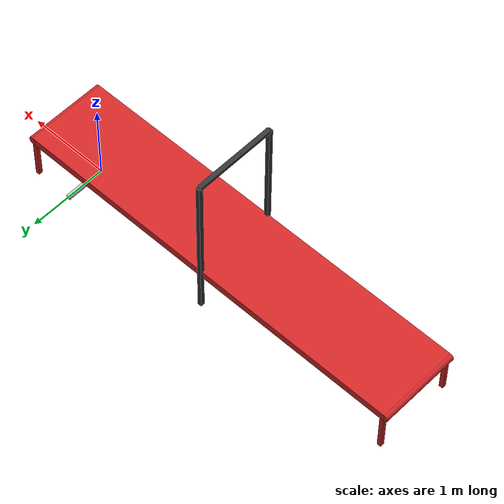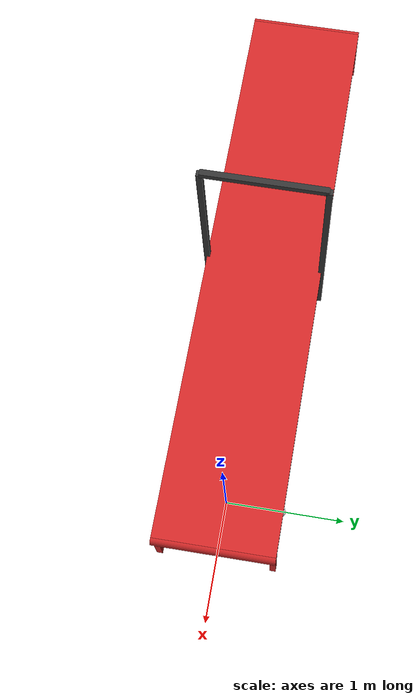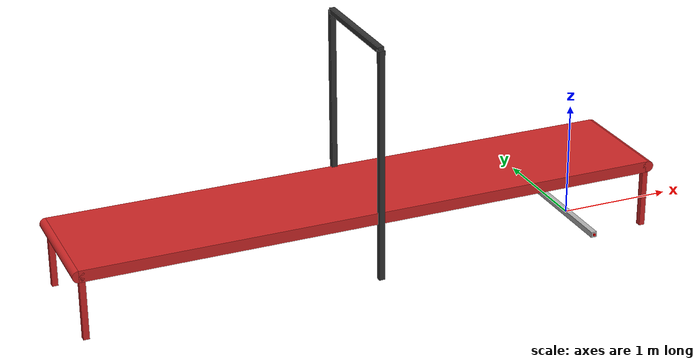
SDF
<sdf version="1.7">
 <world name="warehouse">
  <physics type="ode">
   <max_step_size>0.01</max_step_size>
   <real_time_factor>1.0</real_time_factor>
   <real_time_update_rate>100</real_time_update_rate>
   <max_contacts>20</max_contacts>
  </physics>
  <plugin name="gz::sim::systems::Physics" filename="gz-sim-physics-system"/>
  <plugin name="gz::sim::systems::UserCommands" filename="gz-sim-user-commands-system"/>
  <plugin name="gz::sim::systems::SceneBroadcaster" filename="gz-sim-scene-broadcaster-system"/>
  <plugin name="gz::sim::systems::Contact" filename="gz-sim-contact-system"/>
  <plugin name="gz::sim::systems::ApplyLinkWrench" filename="gz-sim-apply-link-wrench-system"/>
  <plugin name="gz::sim::systems::Sensors" filename="gz-sim-sensors-system">
   <render_engine>ogre2</render_engine>
   <background_color>0.8 0.8 0.8</background_color>
  </plugin>
  <gravity>0 0 -9.8</gravity>
  <scene>
   <ambient>1.0 1.0 1.0</ambient>
   <background>0.8 0.8 0.8</background>
   <shadows>true</shadows>
   <grid>false</grid>
  </scene>
  <light type="directional" name="sun">
   <pose>0 0 10 0 0 0</pose>
   <diffuse>0.8 0.8 0.8 1</diffuse>
   <specular>0.8 0.8 0.8 1</specular>
   <attenuation>
    <range>1000</range>
    <constant>0.9</constant>
    <linear>0.01</linear>
    <quadratic>0.001</quadratic>
   </attenuation>
   <direction>-0.5 0.1 -0.9</direction>
  </light>
  <include><uri>model://textured_conveyor</uri><pose>-2.0 0 0 0 0 0.0</pose></include>
  <include>
   <uri>model://bracket</uri>
   <name>bracket</name>
   <pose degrees="true">-2.0 0 0.0 0 0 90</pose>
   <static>true</static>
  </include>
  <joint name="bracket_lidar_joint" type="fixed">
   <parent>bracket::horizontal_bar</parent>
   <child>lidar_3d::link</child>
  </joint>
  <include>
   <uri>model://dual_camera_bar</uri>
   <name>dual_camera_bar</name>
   <pose degrees="true" relative_to="bracket::horizontal_bar">0 0 0 0 0 -90</pose>
   <static>false</static>
  </include>
  <joint name="bracket_to_dual_bar_joint" type="fixed">
   <parent>bracket::horizontal_bar</parent>
   <child>dual_camera_bar::horizontal_bar</child>
  </joint>
  <joint name="left_camera_joint" type="fixed">
   <parent>dual_camera_bar::left_camera_mount</parent>
   <child>left_camera::link</child>
  </joint>
  <joint name="right_camera_joint" type="fixed">
   <parent>dual_camera_bar::right_camera_mount</parent>
   <child>right_camera::link</child>
  </joint>
 </world>
</sdf>

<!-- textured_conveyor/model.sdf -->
<?xml version="1.0" ?>
<sdf version="1.7">
  <model name="textured_conveyor">
    <static>1</static>
    <link name="base_link">
      <pose relative_to="__model__">0 0 0 0 0 0</pose>
      <inertial>
        <mass>1000.0</mass>
        <inertia>
          <ixx>84.16666666666666</ixx>
          <ixy>0</ixy>
          <ixz>0</ixz>
          <iyy>2084.1666666666665</iyy>
          <iyz>1.5e-05</iyz>
          <izz>2166.6666666666665</izz>
        </inertia>
      </inertial>
      <collision name="main_collision">
        <pose relative_to="base_link">0 0 0.55 0 0 0</pose>
        <geometry>
          <box>
            <size>5.0 1.0 0.1</size>
          </box>
        </geometry>
        <surface>
          <friction>
            <ode>
              <mu>0.7</mu>
              <mu2>150</mu2>
              <fdir1>0 1 0</fdir1>
            </ode>
          </friction>
        </surface>
      </collision>
      <visual name="main_visual">
        <pose relative_to="base_link">0 0 0.55 0 0 0</pose>
        <geometry>
          <box>
            <size>5.0 1.0 0.1</size>
          </box>
        </geometry>
        <material>
          <diffuse>1.0 1.0 1.0</diffuse>
          <specular>1.0 1.0 1.0</specular>
          <pbr>
            <metal>
              <albedo_map>model://textured_conveyor/materials/textures/Leather032_1K-PNG_Color.png</albedo_map>
              <normal_map>model://textured_conveyor/materials/textures/Leather032_1K-PNG_NormalDX.png</normal_map>
              <metalness_map>model://textured_conveyor/materials/textures/Leather032_1K-PNG_Color.png</metalness_map>
              <roughness_map>model://textured_conveyor/materials/textures/Leather032_1K-PNG_Roughness.png</roughness_map>
            </metal>
          </pbr>
          <script>
            <uri>model://textured_conveyor/materials/scripts/</uri>
            <uri>model://textured_conveyor/materials/textures/</uri>
            <name>UrbanTile/textured_conveyor_Belt</name>
          </script>
        </material>
      </visual>
      <collision name="collision_1">
        <pose relative_to="base_link">2.5 0 0.55 -1.570796327 0 0</pose>
        <geometry>
          <cylinder>
            <length>1.0</length>
            <radius>0.05</radius>
          </cylinder>
        </geometry>
        <surface>
          <friction>
            <ode>
              <mu>0.7</mu>
              <mu2>150</mu2>
              <fdir1>0 1 0</fdir1>
            </ode>
          </friction>
        </surface>
      </collision>
      <visual name="visual_1">
        <pose relative_to="base_link">2.5 0 0.55 -1.570796327 0 0</pose>
        <geometry>
          <cylinder>
            <length>1.0</length>
            <radius>0.05</radius>
          </cylinder>
        </geometry>
        <material>
          <diffuse>1.0 1.0 1.0</diffuse>
          <specular>1.0 1.0 1.0</specular>
          <pbr>
            <metal>
              <albedo_map>model://textured_conveyor/materials/textures/Metal055A_1K-PNG_Color.png</albedo_map>
              <metalness_map>model://textured_conveyor/materials/textures/Metal055A_1K-PNG_Color.png</metalness_map>
              <roughness_map>model://textured_conveyor/materials/textures/Metal055A_1K-PNG_Roughness.png</roughness_map>
            </metal>
          </pbr>
          <script>
            <uri>model://textured_conveyor/materials/scripts/</uri>
            <uri>model://textured_conveyor/materials/textures/</uri>
            <name>UrbanTile/textured_conveyor_Roller</name>
          </script>
        </material>
      </visual>
      <collision name="collision_2">
        <pose relative_to="base_link">-2.5 0 0.55 -1.570796327 0 0</pose>
        <geometry>
          <cylinder>
            <length>1.0</length>
            <radius>0.05</radius>
          </cylinder>
        </geometry>
        <surface>
          <friction>
            <ode>
              <mu>0.7</mu>
              <mu2>150</mu2>
              <fdir1>0 1 0</fdir1>
            </ode>
          </friction>
        </surface>
      </collision>
      <visual name="visual_2">
        <pose relative_to="base_link">-2.5 0 0.55 -1.570796327 0 0</pose>
        <geometry>
          <cylinder>
            <length>1.0</length>
            <radius>0.05</radius>
          </cylinder>
        </geometry>
        <material>
          <diffuse>1.0 1.0 1.0</diffuse>
          <specular>1.0 1.0 1.0</specular>
          <pbr>
            <metal>
              <albedo_map>model://textured_conveyor/materials/textures/Metal055A_1K-PNG_Color.png</albedo_map>
              <metalness_map>model://textured_conveyor/materials/textures/Metal055A_1K-PNG_Color.png</metalness_map>
              <roughness_map>model://textured_conveyor/materials/textures/Metal055A_1K-PNG_Roughness.png</roughness_map>
            </metal>
          </pbr>
          <script>
            <uri>model://textured_conveyor/materials/scripts/</uri>
            <uri>model://textured_conveyor/materials/textures/</uri>
            <name>UrbanTile/textured_conveyor_Roller</name>
          </script>
        </material>
      </visual>
      <collision name="leg_collision_0">
        <pose relative_to="base_link">2.475 0.475 0.25 0 0 0</pose>
        <geometry>
          <box>
            <size>0.05 0.05 0.5</size>
          </box>
        </geometry>
      </collision>
      <visual name="leg_visual_0">
        <pose relative_to="base_link">2.475 0.475 0.25 0 0 0</pose>
        <geometry>
          <box>
            <size>0.05 0.05 0.5</size>
          </box>
        </geometry>
        <material>
          <diffuse>1.0 1.0 1.0</diffuse>
          <specular>1.0 1.0 1.0</specular>
          <pbr>
            <metal>
              <albedo_map>model://textured_conveyor/materials/textures/Metal055A_1K-PNG_Color.png</albedo_map>
              <metalness_map>model://textured_conveyor/materials/textures/Metal055A_1K-PNG_Color.png</metalness_map>
              <roughness_map>model://textured_conveyor/materials/textures/Metal055A_1K-PNG_Roughness.png</roughness_map>
            </metal>
          </pbr>
          <script>
            <uri>model://textured_conveyor/materials/scripts/</uri>
            <uri>model://textured_conveyor/materials/textures/</uri>
            <name>UrbanTile/textured_conveyor_Leg</name>
          </script>
        </material>
      </visual>
      <collision name="leg_collision_1">
        <pose relative_to="base_link">2.475 -0.475 0.25 0 0 0</pose>
        <geometry>
          <box>
            <size>0.05 0.05 0.5</size>
          </box>
        </geometry>
      </collision>
      <visual name="leg_visual_1">
        <pose relative_to="base_link">2.475 -0.475 0.25 0 0 0</pose>
        <geometry>
          <box>
            <size>0.05 0.05 0.5</size>
          </box>
        </geometry>
        <material>
          <diffuse>1.0 1.0 1.0</diffuse>
          <specular>1.0 1.0 1.0</specular>
          <pbr>
            <metal>
              <albedo_map>model://textured_conveyor/materials/textures/Metal055A_1K-PNG_Color.png</albedo_map>
              <metalness_map>model://textured_conveyor/materials/textures/Metal055A_1K-PNG_Color.png</metalness_map>
              <roughness_map>model://textured_conveyor/materials/textures/Metal055A_1K-PNG_Roughness.png</roughness_map>
            </metal>
          </pbr>
          <script>
            <uri>model://textured_conveyor/materials/scripts/</uri>
            <uri>model://textured_conveyor/materials/textures/</uri>
            <name>UrbanTile/textured_conveyor_Leg</name>
          </script>
        </material>
      </visual>
      <collision name="leg_collision_2">
        <pose relative_to="base_link">-2.475 0.475 0.25 0 0 0</pose>
        <geometry>
          <box>
            <size>0.05 0.05 0.5</size>
          </box>
        </geometry>
      </collision>
      <visual name="leg_visual_2">
        <pose relative_to="base_link">-2.475 0.475 0.25 0 0 0</pose>
        <geometry>
          <box>
            <size>0.05 0.05 0.5</size>
          </box>
        </geometry>
        <material>
          <diffuse>1.0 1.0 1.0</diffuse>
          <specular>1.0 1.0 1.0</specular>
          <pbr>
            <metal>
              <albedo_map>model://textured_conveyor/materials/textures/Metal055A_1K-PNG_Color.png</albedo_map>
              <metalness_map>model://textured_conveyor/materials/textures/Metal055A_1K-PNG_Color.png</metalness_map>
              <roughness_map>model://textured_conveyor/materials/textures/Metal055A_1K-PNG_Roughness.png</roughness_map>
            </metal>
          </pbr>
          <script>
            <uri>model://textured_conveyor/materials/scripts/</uri>
            <uri>model://textured_conveyor/materials/textures/</uri>
            <name>UrbanTile/textured_conveyor_Leg</name>
          </script>
        </material>
      </visual>
      <collision name="leg_collision_3">
        <pose relative_to="base_link">-2.475 -0.475 0.25 0 0 0</pose>
        <geometry>
          <box>
            <size>0.05 0.05 0.5</size>
          </box>
        </geometry>
      </collision>
      <visual name="leg_visual_3">
        <pose relative_to="base_link">-2.475 -0.475 0.25 0 0 0</pose>
        <geometry>
          <box>
            <size>0.05 0.05 0.5</size>
          </box>
        </geometry>
        <material>
          <diffuse>1.0 1.0 1.0</diffuse>
          <specular>1.0 1.0 1.0</specular>
          <pbr>
            <metal>
              <albedo_map>model://textured_conveyor/materials/textures/Metal055A_1K-PNG_Color.png</albedo_map>
              <metalness_map>model://textured_conveyor/materials/textures/Metal055A_1K-PNG_Color.png</metalness_map>
              <roughness_map>model://textured_conveyor/materials/textures/Metal055A_1K-PNG_Roughness.png</roughness_map>
            </metal>
          </pbr>
          <script>
            <uri>model://textured_conveyor/materials/scripts/</uri>
            <uri>model://textured_conveyor/materials/textures/</uri>
            <name>UrbanTile/textured_conveyor_Leg</name>
          </script>
        </material>
      </visual>
      <gravity>1</gravity>
      <kinematic>0</kinematic>
    </link>

    <!-- Track Controller -->

    <!-- Documentation https://gazebosim.org/api/sim/8/classgz_1_1sim_1_1systems_1_1TrackController.html -->

    <plugin filename="gz-sim-track-controller-system" name="gz::sim::systems::TrackController">
      <link>base_link</link>
      <track_orientation>0 0 0</track_orientation>
      <odometry_publish_frequency>1</odometry_publish_frequency>
      <velocity_topic>/conveyor/cmd_vel</velocity_topic>
    </plugin>
    <plugin filename="gz-sim-triggered-publisher-system" name="gz::sim::systems::TriggeredPublisher">
      <input type="gz.msgs.Int32" topic="/keyboard/keypress">
        <match field="data">87</match>
      </input>
      <output type="gz.msgs.Double" topic="/conveyor/cmd_vel">
        data: 1.0
      </output>
    </plugin>
    <plugin filename="gz-sim-triggered-publisher-system" name="gz::sim::systems::TriggeredPublisher">
      <input type="gz.msgs.Int32" topic="/keyboard/keypress">
        <match field="data">88</match>
      </input>
      <output type="gz.msgs.Double" topic="/conveyor/cmd_vel">
        data: -1.0
      </output>
    </plugin>
    <plugin filename="gz-sim-triggered-publisher-system" name="gz::sim::systems::TriggeredPublisher">
      <input type="gz.msgs.Int32" topic="/keyboard/keypress">
        <match field="data">83</match>
      </input>
      <output type="gz.msgs.Double" topic="/conveyor/cmd_vel">
        data: 0.0
      </output>
    </plugin>
  </model>
</sdf>

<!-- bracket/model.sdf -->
<sdf version="1.7">
  <model name="bracket">
    <!-- Horizontal connecting bar (now the parent) -->
    <link name="horizontal_bar">
      <pose>0 0 2.0 0 0 0</pose>
      <visual name="horizontal_bar_visual">
        <geometry>
          <box>
            <size>1.0 0.05 0.05</size>
          </box>
        </geometry>
        <material>
          <ambient>0.1 0.1 0.1 1</ambient>
          <diffuse>0.2 0.2 0.2 1</diffuse>
          <specular>0.3 0.3 0.3 1</specular>
        </material>
      </visual>
      <collision name="horizontal_bar_collision">
        <geometry>
          <box>
            <size>1.0 0.05 0.05</size>
          </box>
        </geometry>
      </collision>
      <inertial>
        <mass>0.5</mass>
        <inertia>
          <ixx>0.00104</ixx>
          <iyy>0.0417</iyy>
          <izz>0.0417</izz>
          <ixy>0</ixy>
          <ixz>0</ixz>
          <iyz>0</iyz>
        </inertia>
      </inertial>
    </link>

    <!-- Left vertical bar -->
    <link name="left_bar">
      <pose>-0.5 0 1.0 0 0 0</pose>
      <visual name="left_bar_visual">
        <geometry>
          <box>
            <size>0.05 0.05 2.0</size>
          </box>
        </geometry>
        <material>
          <ambient>0.1 0.1 0.1 1</ambient>
          <diffuse>0.2 0.2 0.2 1</diffuse>
          <specular>0.3 0.3 0.3 1</specular>
        </material>
      </visual>
      <collision name="left_bar_collision">
        <geometry>
          <box>
            <size>0.05 0.05 2.0</size>
          </box>
        </geometry>
      </collision>
      <inertial>
        <mass>1.0</mass>
        <inertia>
          <ixx>0.335</ixx>
          <iyy>0.335</iyy>
          <izz>0.00208</izz>
          <ixy>0</ixy>
          <ixz>0</ixz>
          <iyz>0</iyz>
        </inertia>
      </inertial>
    </link>

    <!-- Right vertical bar -->
    <link name="right_bar">
      <pose>0.5 0 1.0 0 0 0</pose>
      <visual name="right_bar_visual">
        <geometry>
          <box>
            <size>0.05 0.05 2.0</size>
          </box>
        </geometry>
        <material>
          <ambient>0.1 0.1 0.1 1</ambient>
          <diffuse>0.2 0.2 0.2 1</diffuse>
          <specular>0.3 0.3 0.3 1</specular>
        </material>
      </visual>
      <collision name="right_bar_collision">
        <geometry>
          <box>
            <size>0.05 0.05 2.0</size>
          </box>
        </geometry>
      </collision>
      <inertial>
        <mass>1.0</mass>
        <inertia>
          <ixx>0.335</ixx>
          <iyy>0.335</iyy>
          <izz>0.00208</izz>
          <ixy>0</ixy>
          <ixz>0</ixz>
          <iyz>0</iyz>
        </inertia>
      </inertial>
    </link>

    <!-- Joint between horizontal bar and left bar -->
    <joint name="horizontal_to_left_joint" type="fixed">
      <parent>horizontal_bar</parent>
      <child>left_bar</child>
      <pose>0 0 -1.0 0 0 0</pose>
    </joint>

    <!-- Joint between horizontal bar and right bar -->
    <joint name="horizontal_to_right_joint" type="fixed">
      <parent>horizontal_bar</parent>
      <child>right_bar</child>
      <pose>0 0 -1.0 0 0 0</pose>
    </joint>
  </model>
</sdf>

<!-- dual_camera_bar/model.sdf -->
<sdf version="1.7">
  <model name="dual_camera_bar">
    <static>false</static>

    <!-- Main horizontal bar -->
    <link name="horizontal_bar">
      <pose>0 0 0 0 0 0</pose>
      <inertial>
        <mass>1.0</mass>
        <inertia>
          <ixx>0.01</ixx>
          <iyy>0.083</iyy>
          <izz>0.083</izz>
          <ixy>0</ixy>
          <ixz>0</ixz>
          <iyz>0</iyz>
        </inertia>
      </inertial>

      <collision name="collision">
        <geometry>
          <box>
            <size>1.0 0.05 0.05</size>
          </box>
        </geometry>
      </collision>

      <visual name="visual">
        <geometry>
          <box>
            <size>1.0 0.05 0.05</size>
          </box>
        </geometry>
        <material>
          <ambient>0.3 0.3 0.3 1</ambient>
          <diffuse>0.7 0.7 0.7 1</diffuse>
          <specular>1 1 1 1</specular>
        </material>
      </visual>
    </link>

    <!-- Left camera mount point (will be connected to a camera in the world file) -->
    <link name="left_camera_mount">
      <pose relative_to="horizontal_bar">-0.5 0 0 0 0 0</pose>
      <inertial>
        <mass>0.1</mass>
        <inertia>
          <ixx>0.001</ixx>
          <iyy>0.001</iyy>
          <izz>0.001</izz>
          <ixy>0</ixy>
          <ixz>0</ixz>
          <iyz>0</iyz>
        </inertia>
      </inertial>

      <collision name="collision">
        <geometry>
          <box>
            <size>0.02 0.02 0.02</size>
          </box>
        </geometry>
      </collision>

      <visual name="visual">
        <geometry>
          <box>
            <size>0.02 0.02 0.02</size>
          </box>
        </geometry>
        <material>
          <ambient>1 0 0 1</ambient>
          <diffuse>1 0 0 1</diffuse>
        </material>
      </visual>
    </link>

    <!-- Right camera mount point (will be connected to a camera in the world file) -->
    <link name="right_camera_mount">
      <pose relative_to="horizontal_bar">0.5 0 0 0 0 0</pose>
      <inertial>
        <mass>0.1</mass>
        <inertia>
          <ixx>0.001</ixx>
          <iyy>0.001</iyy>
          <izz>0.001</izz>
          <ixy>0</ixy>
          <ixz>0</ixz>
          <iyz>0</iyz>
        </inertia>
      </inertial>

      <collision name="collision">
        <geometry>
          <box>
            <size>0.02 0.02 0.02</size>
          </box>
        </geometry>
      </collision>

      <visual name="visual">
        <geometry>
          <box>
            <size>0.02 0.02 0.02</size>
          </box>
        </geometry>
        <material>
          <ambient>1 0 0 1</ambient>
          <diffuse>1 0 0 1</diffuse>
        </material>
      </visual>
    </link>

    <!-- Fixed joints between the bar and camera mount points -->
    <joint name="left_mount_joint" type="fixed">
      <parent>horizontal_bar</parent>
      <child>left_camera_mount</child>
    </joint>

    <joint name="right_mount_joint" type="fixed">
      <parent>horizontal_bar</parent>
      <child>right_camera_mount</child>
    </joint>
  </model>
</sdf>
